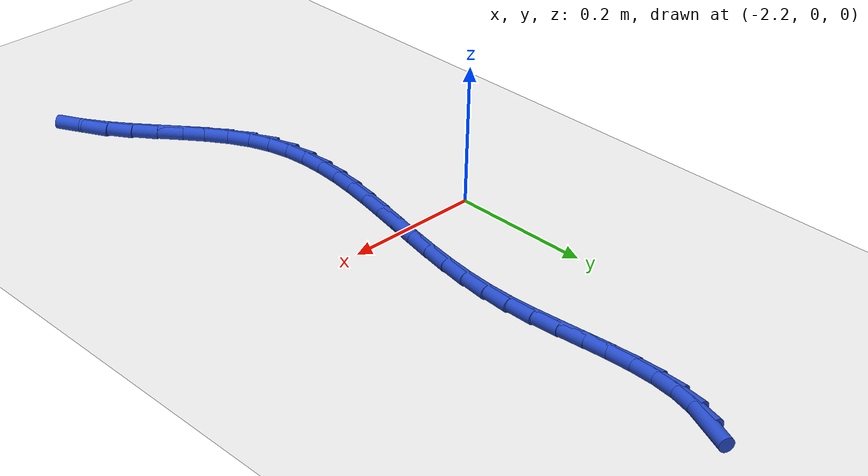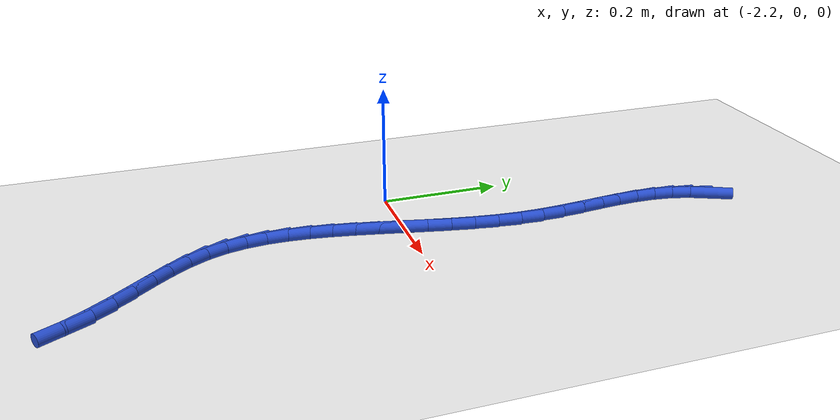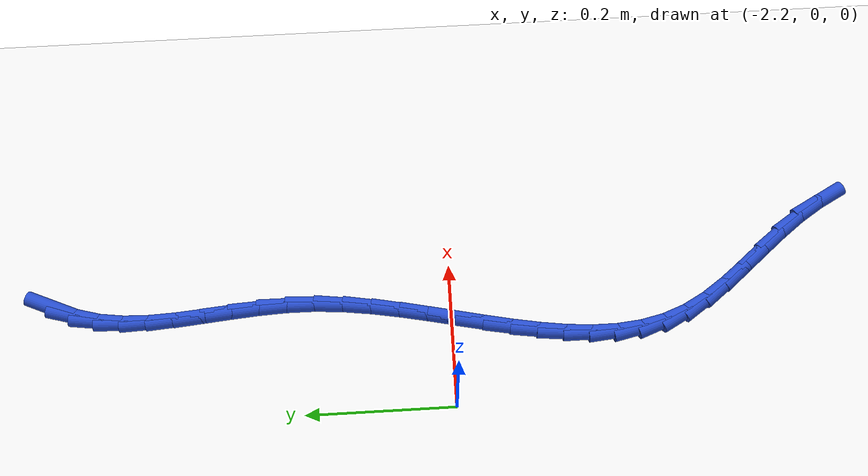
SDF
<sdf version="1.6">
 <world name="default">
  <model name="ground_plane">
   <static>1</static>
   <link name="link">
    <collision name="collision">
     <geometry><plane><normal>0 0 1</normal><size>100 100</size></plane></geometry>
     <surface><friction><ode><mu>100</mu><mu2>50</mu2></ode></friction></surface>
    </collision>
    <visual name="visual">
     <cast_shadows>0</cast_shadows>
     <geometry><plane><normal>0 0 1</normal><size>100 100</size></plane></geometry>
     <material>
      <script><uri>file://media/materials/scripts/gazebo.material</uri><name>Gazebo/WhiteGlow</name></script>
     </material>
    </visual>
   </link>
  </model>
  <model name="line">
   <link name="link_78">
    <pose>-2.0348514345484268 0.5309116874966329 0.01 0 1.57 1.149268176694557</pose>
    <collision name="collision">
     <geometry><cylinder><radius>0.01</radius><length>0.08</length></cylinder></geometry>
    </collision>
    <visual name="visual">
     <material>
      <script><name>Gazebo/Blue</name><uri>file://media/materials/scripts/gazebo.material</uri></script>
     </material>
     <geometry><cylinder><radius>0.01</radius><length>0.08</length></cylinder></geometry>
    </visual>
   </link>
   <link name="link_79">
    <pose>-2.048152597191906 0.5012485211647859 0.01 0 1.57 1.2992589470026006</pose>
    <collision name="collision">
     <geometry><cylinder><radius>0.01</radius><length>0.08</length></cylinder></geometry>
    </collision>
    <visual name="visual">
     <material>
      <script><name>Gazebo/Blue</name><uri>file://media/materials/scripts/gazebo.material</uri></script>
     </material>
     <geometry><cylinder><radius>0.01</radius><length>0.08</length></cylinder></geometry>
    </visual>
   </link>
   <link name="link_80">
    <pose>-2.0568342234120514 0.4700660844668847 0.01 0 1.57 1.4384650399189565</pose>
    <collision name="collision">
     <geometry><cylinder><radius>0.01</radius><length>0.08</length></cylinder></geometry>
    </collision>
    <visual name="visual">
     <material>
      <script><name>Gazebo/Blue</name><uri>file://media/materials/scripts/gazebo.material</uri></script>
     </material>
     <geometry><cylinder><radius>0.01</radius><length>0.08</length></cylinder></geometry>
    </visual>
   </link>
   <link name="link_81">
    <pose>-2.0611825448047374 0.4373987551002222 0.01 0 1.57 1.543217004678586</pose>
    <collision name="collision">
     <geometry><cylinder><radius>0.01</radius><length>0.08</length></cylinder></geometry>
    </collision>
    <visual name="visual">
     <material>
      <script><name>Gazebo/Blue</name><uri>file://media/materials/scripts/gazebo.material</uri></script>
     </material>
     <geometry><cylinder><radius>0.01</radius><length>0.08</length></cylinder></geometry>
    </visual>
   </link>
   <link name="link_82">
    <pose>-2.0621198015702404 0.4034233325814914 0.01 0 1.57 -1.5271445264301924</pose>
    <collision name="collision">
     <geometry><cylinder><radius>0.01</radius><length>0.08</length></cylinder></geometry>
    </collision>
    <visual name="visual">
     <material>
      <script><name>Gazebo/Blue</name><uri>file://media/materials/scripts/gazebo.material</uri></script>
     </material>
     <geometry><cylinder><radius>0.01</radius><length>0.08</length></cylinder></geometry>
    </visual>
   </link>
   <link name="link_83">
    <pose>-2.060586535105886 0.3683207146263131 0.01 0 1.57 -1.4860252019360927</pose>
    <collision name="collision">
     <geometry><cylinder><radius>0.01</radius><length>0.08</length></cylinder></geometry>
    </collision>
    <visual name="visual">
     <material>
      <script><name>Gazebo/Blue</name><uri>file://media/materials/scripts/gazebo.material</uri></script>
     </material>
     <geometry><cylinder><radius>0.01</radius><length>0.08</length></cylinder></geometry>
    </visual>
   </link>
   <link name="link_84">
    <pose>-2.0575232868089994 0.33227179895030695 0.01 0 1.57 -1.4719007553009327</pose>
    <collision name="collision">
     <geometry><cylinder><radius>0.01</radius><length>0.08</length></cylinder></geometry>
    </collision>
    <visual name="visual">
     <material>
      <script><name>Gazebo/Blue</name><uri>file://media/materials/scripts/gazebo.material</uri></script>
     </material>
     <geometry><cylinder><radius>0.01</radius><length>0.08</length></cylinder></geometry>
    </visual>
   </link>
   <link name="link_85">
    <pose>-2.053870598076907 0.29545748326909405 0.01 0 1.57 -1.4827440591141536</pose>
    <collision name="collision">
     <geometry><cylinder><radius>0.01</radius><length>0.08</length></cylinder></geometry>
    </collision>
    <visual name="visual">
     <material>
      <script><name>Gazebo/Blue</name><uri>file://media/materials/scripts/gazebo.material</uri></script>
     </material>
     <geometry><cylinder><radius>0.01</radius><length>0.08</length></cylinder></geometry>
    </visual>
   </link>
   <link name="link_86">
    <pose>-2.0505690103069334 0.25805866529829513 0.01 0 1.57 -1.5176765945664916</pose>
    <collision name="collision">
     <geometry><cylinder><radius>0.01</radius><length>0.08</length></cylinder></geometry>
    </collision>
    <visual name="visual">
     <material>
      <script><name>Gazebo/Blue</name><uri>file://media/materials/scripts/gazebo.material</uri></script>
     </material>
     <geometry><cylinder><radius>0.01</radius><length>0.08</length></cylinder></geometry>
    </visual>
   </link>
   <link name="link_87">
    <pose>-2.0485590648964047 0.22025624275353 0.01 0 1.57 1.565137476093093</pose>
    <collision name="collision">
     <geometry><cylinder><radius>0.01</radius><length>0.08</length></cylinder></geometry>
    </collision>
    <visual name="visual">
     <material>
      <script><name>Gazebo/Blue</name><uri>file://media/materials/scripts/gazebo.material</uri></script>
     </material>
     <geometry><cylinder><radius>0.01</radius><length>0.08</length></cylinder></geometry>
    </visual>
   </link>
   <link name="link_88">
    <pose>-2.0487742480200803 0.18223070751629977 0.01 0 1.57 1.496114686961703</pose>
    <collision name="collision">
     <geometry><cylinder><radius>0.01</radius><length>0.08</length></cylinder></geometry>
    </collision>
    <visual name="visual">
     <material>
      <script><name>Gazebo/Blue</name><uri>file://media/materials/scripts/gazebo.material</uri></script>
     </material>
     <geometry><cylinder><radius>0.01</radius><length>0.08</length></cylinder></geometry>
    </visual>
   </link>
   <link name="link_89">
    <pose>-2.0516247896411275 0.14413245245675652 0.01 0 1.57 1.4396492433320283</pose>
    <collision name="collision">
     <geometry><cylinder><radius>0.01</radius><length>0.08</length></cylinder></geometry>
    </collision>
    <visual name="visual">
     <material>
      <script><name>Gazebo/Blue</name><uri>file://media/materials/scripts/gazebo.material</uri></script>
     </material>
     <geometry><cylinder><radius>0.01</radius><length>0.08</length></cylinder></geometry>
    </visual>
   </link>
   <link name="link_90">
    <pose>-2.0566464980952928 0.10606157151710112 0.01 0 1.57 1.3974329858172503</pose>
    <collision name="collision">
     <geometry><cylinder><radius>0.01</radius><length>0.08</length></cylinder></geometry>
    </collision>
    <visual name="visual">
     <material>
      <script><name>Gazebo/Blue</name><uri>file://media/materials/scripts/gazebo.material</uri></script>
     </material>
     <geometry><cylinder><radius>0.01</radius><length>0.08</length></cylinder></geometry>
    </visual>
   </link>
   <link name="link_91">
    <pose>-2.0632920347307357 0.06811337581599951 0.01 0 1.57 1.368919878590793</pose>
    <collision name="collision">
     <geometry><cylinder><radius>0.01</radius><length>0.08</length></cylinder></geometry>
    </collision>
    <visual name="visual">
     <material>
      <script><name>Gazebo/Blue</name><uri>file://media/materials/scripts/gazebo.material</uri></script>
     </material>
     <geometry><cylinder><radius>0.01</radius><length>0.08</length></cylinder></geometry>
    </visual>
   </link>
   <link name="link_92">
    <pose>-2.0710140608956173 0.030383176472118925 0.01 0 1.57 1.353749978917285</pose>
    <collision name="collision">
     <geometry><cylinder><radius>0.01</radius><length>0.08</length></cylinder></geometry>
    </collision>
    <visual name="visual">
     <material>
      <script><name>Gazebo/Blue</name><uri>file://media/materials/scripts/gazebo.material</uri></script>
     </material>
     <geometry><cylinder><radius>0.01</radius><length>0.08</length></cylinder></geometry>
    </visual>
   </link>
   <link name="link_93">
    <pose>-2.0792652379380963 -0.0070337153958735694 0.01 0 1.57 1.351897488018428</pose>
    <collision name="collision">
     <geometry><cylinder><radius>0.01</radius><length>0.08</length></cylinder></geometry>
    </collision>
    <visual name="visual">
     <material>
      <script><name>Gazebo/Blue</name><uri>file://media/materials/scripts/gazebo.material</uri></script>
     </material>
     <geometry><cylinder><radius>0.01</radius><length>0.08</length></cylinder></geometry>
    </visual>
   </link>
   <link name="link_94">
    <pose>-2.0874982272063334 -0.04404198866931199 0.01 0 1.57 1.3637634474271687</pose>
    <collision name="collision">
     <geometry><cylinder><radius>0.01</radius><length>0.08</length></cylinder></geometry>
    </collision>
    <visual name="visual">
     <material>
      <script><name>Gazebo/Blue</name><uri>file://media/materials/scripts/gazebo.material</uri></script>
     </material>
     <geometry><cylinder><radius>0.01</radius><length>0.08</length></cylinder></geometry>
    </visual>
   </link>
   <link name="link_95">
    <pose>-2.0951656900484874 -0.08054633222952923 0.01 0 1.57 1.3902312500006266</pose>
    <collision name="collision">
     <geometry><cylinder><radius>0.01</radius><length>0.08</length></cylinder></geometry>
    </collision>
    <visual name="visual">
     <material>
      <script><name>Gazebo/Blue</name><uri>file://media/materials/scripts/gazebo.material</uri></script>
     </material>
     <geometry><cylinder><radius>0.01</radius><length>0.08</length></cylinder></geometry>
    </visual>
   </link>
   <link name="link_96">
    <pose>-2.1017202878127192 -0.11645143495785845 0.01 0 1.57 1.4326777446845138</pose>
    <collision name="collision">
     <geometry><cylinder><radius>0.01</radius><length>0.08</length></cylinder></geometry>
    </collision>
    <visual name="visual">
     <material>
      <script><name>Gazebo/Blue</name><uri>file://media/materials/scripts/gazebo.material</uri></script>
     </material>
     <geometry><cylinder><radius>0.01</radius><length>0.08</length></cylinder></geometry>
    </visual>
   </link>
   <link name="link_97">
    <pose>-2.106614681847189 -0.15166198573563297 0.01 0 1.57 1.4928950852606986</pose>
    <collision name="collision">
     <geometry><cylinder><radius>0.01</radius><length>0.08</length></cylinder></geometry>
    </collision>
    <visual name="visual">
     <material>
      <script><name>Gazebo/Blue</name><uri>file://media/materials/scripts/gazebo.material</uri></script>
     </material>
     <geometry><cylinder><radius>0.01</radius><length>0.08</length></cylinder></geometry>
    </visual>
   </link>
   <link name="link_98">
    <pose>-2.109301533500055 -0.18608267344418533 0.01 0 1.57 -1.5687677523042094</pose>
    <collision name="collision">
     <geometry><cylinder><radius>0.01</radius><length>0.08</length></cylinder></geometry>
    </collision>
    <visual name="visual">
     <material>
      <script><name>Gazebo/Blue</name><uri>file://media/materials/scripts/gazebo.material</uri></script>
     </material>
     <geometry><cylinder><radius>0.01</radius><length>0.08</length></cylinder></geometry>
    </visual>
   </link>
   <link name="link_99">
    <pose>-2.1092335041194787 -0.21961818696485014 0.01 0 1.57 -1.4676391180090493</pose>
    <collision name="collision">
     <geometry><cylinder><radius>0.01</radius><length>0.08</length></cylinder></geometry>
    </collision>
    <visual name="visual">
     <material>
      <script><name>Gazebo/Blue</name><uri>file://media/materials/scripts/gazebo.material</uri></script>
     </material>
     <geometry><cylinder><radius>0.01</radius><length>0.08</length></cylinder></geometry>
    </visual>
   </link>
   <link name="link_100">
    <pose>-2.10586325505362 -0.2521732151789601 0.01 0 1.57 -1.3453439930193554</pose>
    <collision name="collision">
     <geometry><cylinder><radius>0.01</radius><length>0.08</length></cylinder></geometry>
    </collision>
    <visual name="visual">
     <material>
      <script><name>Gazebo/Blue</name><uri>file://media/materials/scripts/gazebo.material</uri></script>
     </material>
     <geometry><cylinder><radius>0.01</radius><length>0.08</length></cylinder></geometry>
    </visual>
   </link>
   <link name="link_101">
    <pose>-2.0986434476506375 -0.2836524469678482 0.01 0 1.57 -1.2047803706002878</pose>
    <collision name="collision">
     <geometry><cylinder><radius>0.01</radius><length>0.08</length></cylinder></geometry>
    </collision>
    <visual name="visual">
     <material>
      <script><name>Gazebo/Blue</name><uri>file://media/materials/scripts/gazebo.material</uri></script>
     </material>
     <geometry><cylinder><radius>0.01</radius><length>0.08</length></cylinder></geometry>
    </visual>
   </link>
   <link name="link_102">
    <pose>-2.087026743258692 -0.3139605712128479 0.01 0 1.57 -1.0610889586537229</pose>
    <collision name="collision">
     <geometry><cylinder><radius>0.01</radius><length>0.08</length></cylinder></geometry>
    </collision>
    <visual name="visual">
     <material>
      <script><name>Gazebo/Blue</name><uri>file://media/materials/scripts/gazebo.material</uri></script>
     </material>
     <geometry><cylinder><radius>0.01</radius><length>0.08</length></cylinder></geometry>
    </visual>
   </link>
   <link name="link_103">
    <pose>-2.0707487993228213 -0.3430816516769086 0.01 0 1.57 -0.9545457189160649</pose>
    <collision name="collision">
     <geometry><cylinder><radius>0.01</radius><length>0.08</length></cylinder></geometry>
    </collision>
    <visual name="visual">
     <material>
      <script><name>Gazebo/Blue</name><uri>file://media/materials/scripts/gazebo.material</uri></script>
     </material>
     <geometry><cylinder><radius>0.01</radius><length>0.08</length></cylinder></geometry>
    </visual>
   </link>
   <link name="link_104">
    <pose>-2.0507384007655576 -0.3713344010927871 0.01 0 1.57 -0.8902325643863439</pose>
    <collision name="collision">
     <geometry><cylinder><radius>0.01</radius><length>0.08</length></cylinder></geometry>
    </collision>
    <visual name="visual">
     <material>
      <script><name>Gazebo/Blue</name><uri>file://media/materials/scripts/gazebo.material</uri></script>
     </material>
     <geometry><cylinder><radius>0.01</radius><length>0.08</length></cylinder></geometry>
    </visual>
   </link>
   <link name="link_105">
    <pose>-2.028238716845282 -0.3991257108632459 0.01 0 1.57 -0.8627641243294624</pose>
    <collision name="collision">
     <geometry><cylinder><radius>0.01</radius><length>0.08</length></cylinder></geometry>
    </collision>
    <visual name="visual">
     <material>
      <script><name>Gazebo/Blue</name><uri>file://media/materials/scripts/gazebo.material</uri></script>
     </material>
     <geometry><cylinder><radius>0.01</radius><length>0.08</length></cylinder></geometry>
    </visual>
   </link>
   <link name="link_106">
    <pose>-2.004492918428534 -0.4268624728421079 0.01 0 1.57 -0.8689329488951033</pose>
    <collision name="collision">
     <geometry><cylinder><radius>0.01</radius><length>0.08</length></cylinder></geometry>
    </collision>
    <visual name="visual">
     <material>
      <script><name>Gazebo/Blue</name><uri>file://media/materials/scripts/gazebo.material</uri></script>
     </material>
     <geometry><cylinder><radius>0.01</radius><length>0.08</length></cylinder></geometry>
    </visual>
   </link>
   <link name="link_107">
    <pose>-1.9807441763818572 -0.45495157888319404 0.01 0 1.57 -0.9082233227823898</pose>
    <collision name="collision">
     <geometry><cylinder><radius>0.01</radius><length>0.08</length></cylinder></geometry>
    </collision>
    <visual name="visual">
     <material>
      <script><name>Gazebo/Blue</name><uri>file://media/materials/scripts/gazebo.material</uri></script>
     </material>
     <geometry><cylinder><radius>0.01</radius><length>0.08</length></cylinder></geometry>
    </visual>
   </link>
   <link name="link_108">
    <pose>-1.958235661571792 -0.4837999208403258 0.01 0 1.57 -0.981783494794423</pose>
    <collision name="collision">
     <geometry><cylinder><radius>0.01</radius><length>0.08</length></cylinder></geometry>
    </collision>
    <visual name="visual">
     <material>
      <script><name>Gazebo/Blue</name><uri>file://media/materials/scripts/gazebo.material</uri></script>
     </material>
     <geometry><cylinder><radius>0.01</radius><length>0.08</length></cylinder></geometry>
    </visual>
   </link>
   <link name="link_109">
    <pose>-1.9381876891373013 -0.5138061567076706 0.01 0 1.57 -1.069420820293599</pose>
    <collision name="collision">
     <geometry><cylinder><radius>0.01</radius><length>0.08</length></cylinder></geometry>
    </collision>
    <visual name="visual">
     <material>
      <script><name>Gazebo/Blue</name><uri>file://media/materials/scripts/gazebo.material</uri></script>
     </material>
     <geometry><cylinder><radius>0.01</radius><length>0.08</length></cylinder></geometry>
    </visual>
   </link>
  </model>
 </world>
</sdf>
